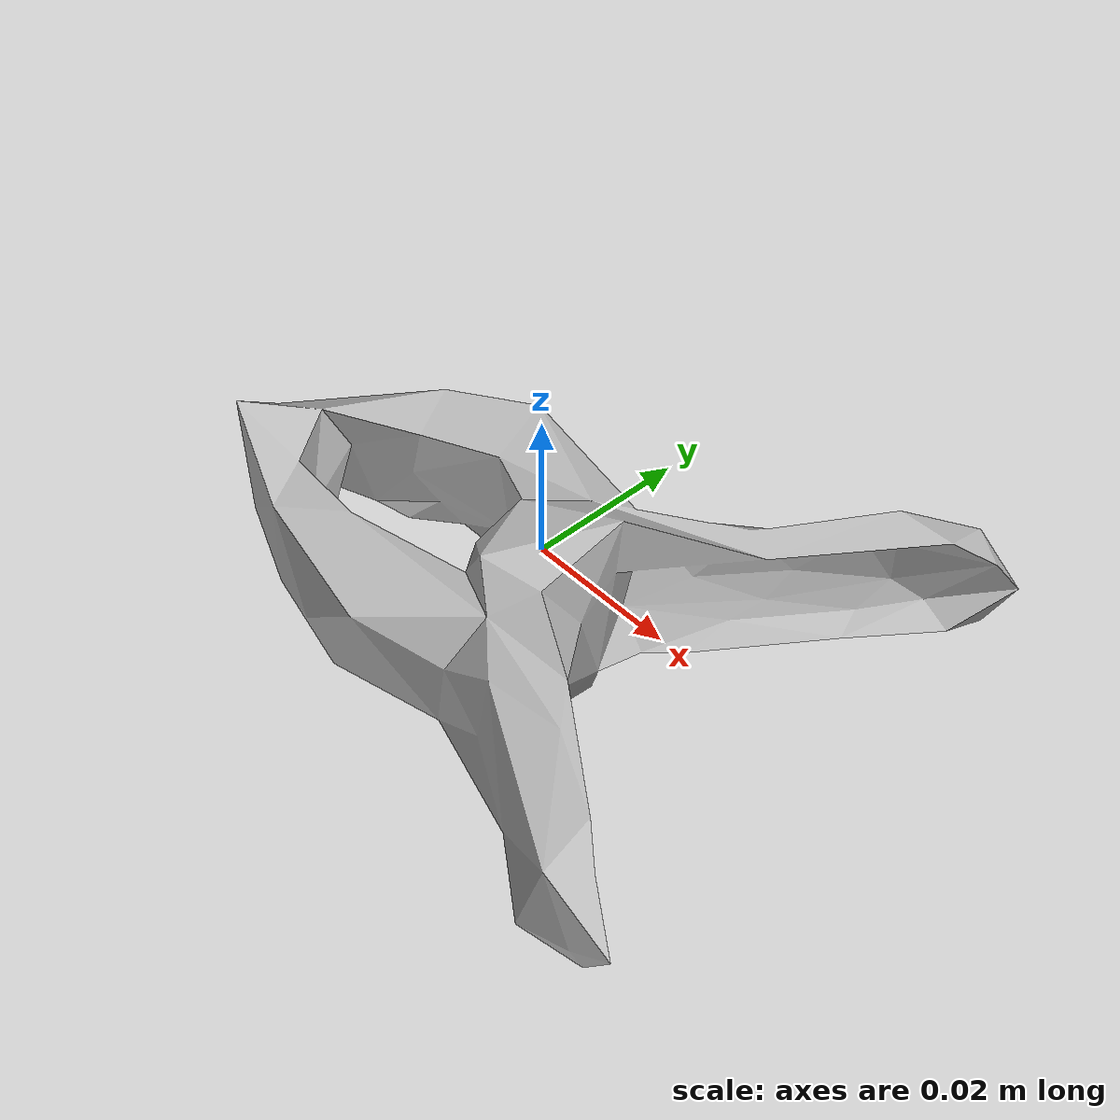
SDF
<?xml version='1.0'?>
<sdf version="1.4">
  <model name="050_medium_clamp">
    <static>false</static>
    <link name="link">
      <inertial>
        <pose>0.02200465998721188 -0.013849002196178161 0.01258853543009111 -1.958341479247255 -1.5595980694883018 2.0920614531686796</pose>
        <mass>0.007566651591888768</mass>
        <inertia>
          <ixx>5.100157797019725e-06</ixx>
          <ixy>1.0072071776322403e-22</ixy>
          <ixz>-3.722324069004751e-23</ixz>
          <iyy>3.4552068736840886e-06</iyy>
          <iyz>-2.6229976637928483e-22</iyz>
          <izz>2.1423305014474594e-06</izz>
        </inertia>
      </inertial>
      <collision name="collision">
        <geometry>
          <mesh>
            <!-- Use a downsampled mesh for collisions -->
            <uri>model:///050_medium_clamp/050_medium_clamp_250_collision.stl</uri>
	        </mesh>
        </geometry>
        <surface>
      </surface>
      </collision>
      <visual name="visual">
        <geometry>
          <mesh>
            <uri>model:///050_medium_clamp/textured.obj</uri>
	        </mesh>
        </geometry>
        <material>
          <script>
            <uri>model:///050_medium_clamp/050_medium_clamp.material</uri>
            <name>050_medium_clamp</name>
          </script>
        </material>
      </visual>
    </link>
  </model>
</sdf>
